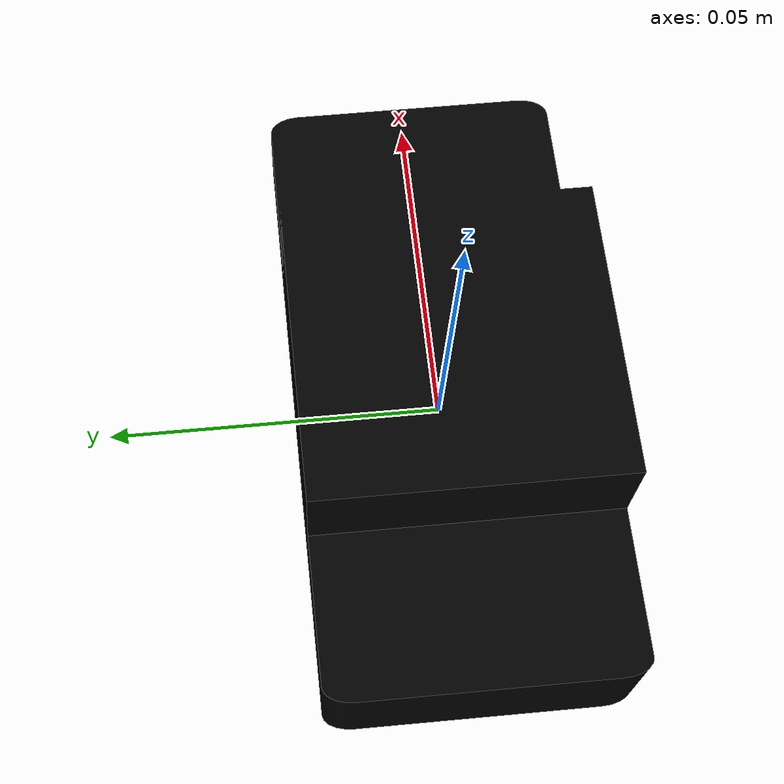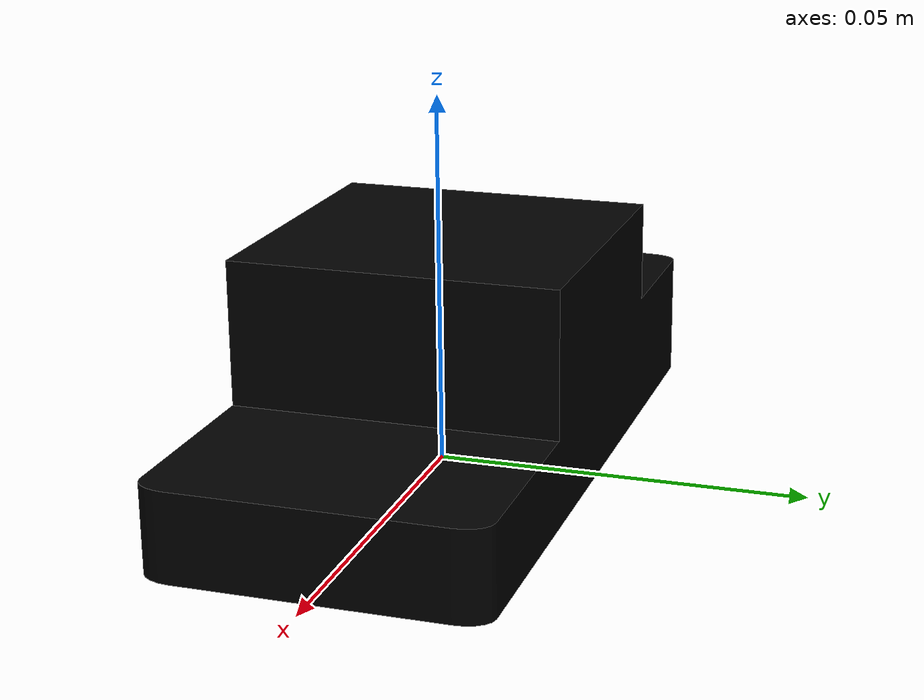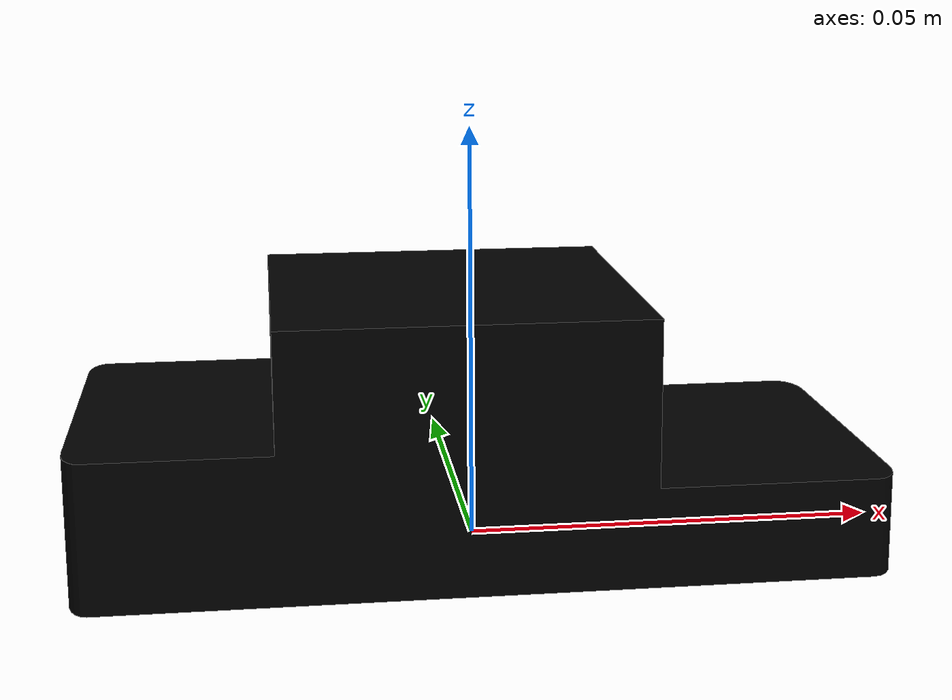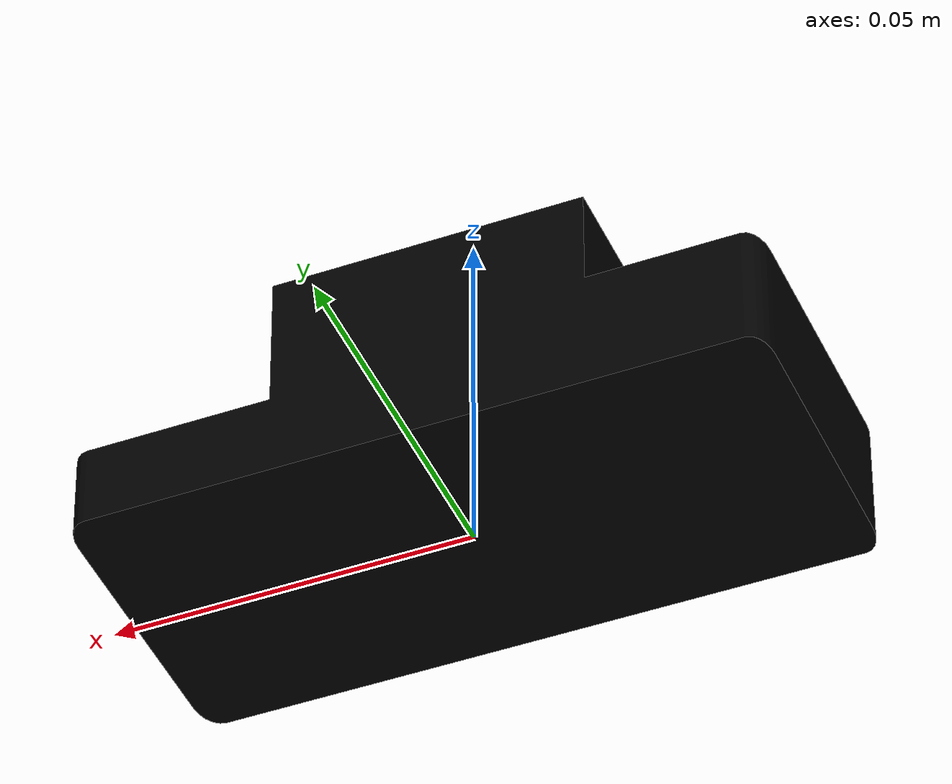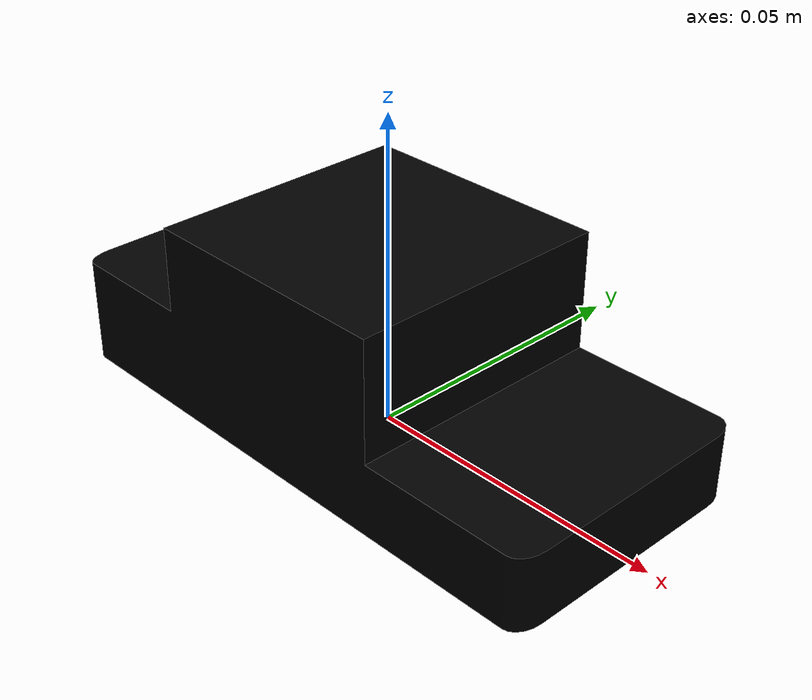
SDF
<?xml version="1.0" ?>
<sdf version="1.6">
  <model name="pixhawk2">
    <link name="link">
      <pose>0 0 0 0 0 0</pose>
      <inertial>
        <pose>0 0 0 0 0 0</pose>
        <mass>0.075</mass>
        <inertia>
          <ixx>1e-05</ixx>
          <ixy>0</ixy>
          <ixz>0</ixz>
          <iyy>1e-05</iyy>
          <iyz>0</iyz>
          <izz>1e-05</izz>
        </inertia>
      </inertial>
      <visual name="pixhawk2_visual">
        <geometry>
          <mesh>
            <scale>1 1 1</scale>
            <uri>file://tarot_680/components/pixhawk2/meshes/pixhawk2.dae</uri>
          </mesh>
        </geometry>
        <material>
          <ambient>0 0 0 1</ambient>
          <diffuse>0 0 0 1</diffuse>
          <specular>1 1 1 1</specular>
          <emissive>0 0 0 1</emissive>
        </material>
      </visual>
      <collision name="pixhawk2_collison">
        <pose>0 0 0.0155 0 0 0</pose>
        <geometry>
          <box>
            <size>0.095 0.045 0.031</size>
          </box>
        </geometry>
        <surface>
          <contact>
            <ode/>
          </contact>
          <friction>
            <ode/>
          </friction>
        </surface>
      </collision>
    </link>
  </model>
</sdf>
